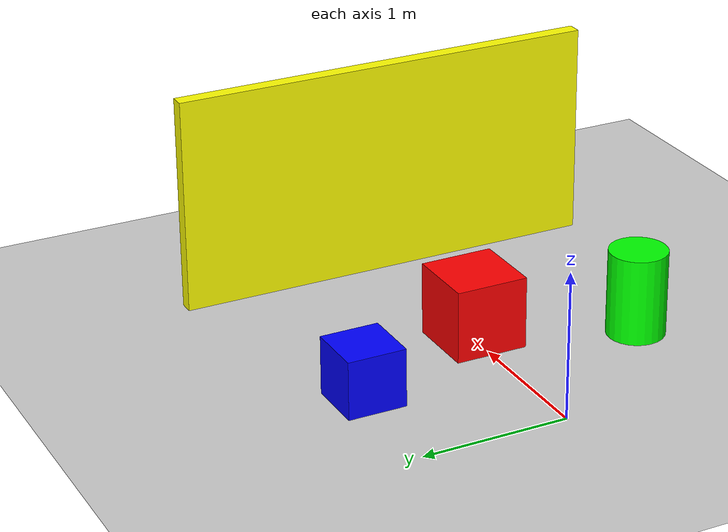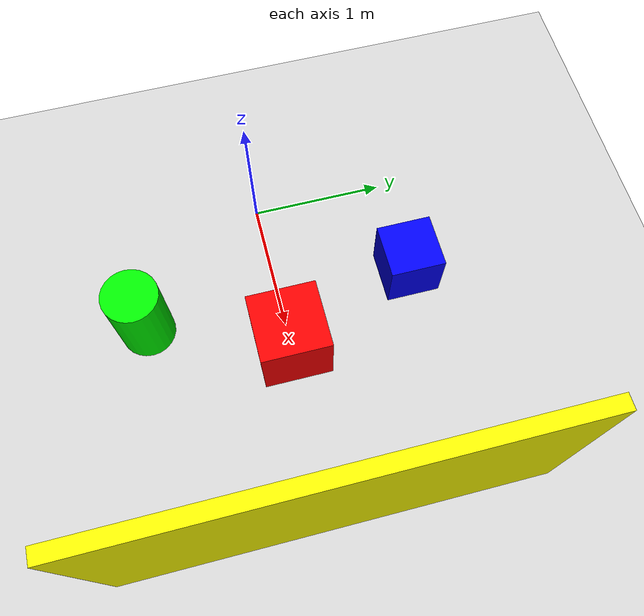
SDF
<?xml version="1.0" ?>
<sdf version="1.6">
  <world name="bomi_test_world">
    <gravity>0 0 -9.8</gravity>

    <scene>
      <ambient>0.7 0.7 0.7 1</ambient>
      <background>0.85 0.9 1.0 1</background>
      <shadows>true</shadows>
    </scene>

    <include>
      <uri>model://ground_plane</uri>
    </include>

    <include>
      <uri>model://sun</uri>
    </include>

    <model name="red_box_front">
      <static>true</static>
      <pose>1.2 0 0.25 0 0 0</pose>
      <link name="link">
        <collision name="collision">
          <geometry>
            <box>
              <size>0.5 0.5 0.5</size>
            </box>
          </geometry>
        </collision>
        <visual name="visual">
          <geometry>
            <box>
              <size>0.5 0.5 0.5</size>
            </box>
          </geometry>
          <material>
            <ambient>1 0 0 1</ambient>
            <diffuse>1 0 0 1</diffuse>
          </material>
        </visual>
      </link>
    </model>

    <model name="blue_box_left">
      <static>true</static>
      <pose>0.8 1.0 0.2 0 0 0</pose>
      <link name="link">
        <collision name="collision">
          <geometry>
            <box>
              <size>0.4 0.4 0.4</size>
            </box>
          </geometry>
        </collision>
        <visual name="visual">
          <geometry>
            <box>
              <size>0.4 0.4 0.4</size>
            </box>
          </geometry>
          <material>
            <ambient>0 0 1 1</ambient>
            <diffuse>0 0 1 1</diffuse>
          </material>
        </visual>
      </link>
    </model>

    <model name="green_cylinder_right">
      <static>true</static>
      <pose>0.8 -1.0 0.3 0 0 0</pose>
      <link name="link">
        <collision name="collision">
          <geometry>
            <cylinder>
              <radius>0.2</radius>
              <length>0.6</length>
            </cylinder>
          </geometry>
        </collision>
        <visual name="visual">
          <geometry>
            <cylinder>
              <radius>0.2</radius>
              <length>0.6</length>
            </cylinder>
          </geometry>
          <material>
            <ambient>0 1 0 1</ambient>
            <diffuse>0 1 0 1</diffuse>
          </material>
        </visual>
      </link>
    </model>

    <model name="yellow_wall_back">
      <static>true</static>
      <pose>2.5 0 0.75 0 0 0</pose>
      <link name="link">
        <collision name="collision">
          <geometry>
            <box>
              <size>0.1 3.0 1.5</size>
            </box>
          </geometry>
        </collision>
        <visual name="visual">
          <geometry>
            <box>
              <size>0.1 3.0 1.5</size>
            </box>
          </geometry>
          <material>
            <ambient>1 1 0 1</ambient>
            <diffuse>1 1 0 1</diffuse>
          </material>
        </visual>
      </link>
    </model>
  </world>
</sdf>
